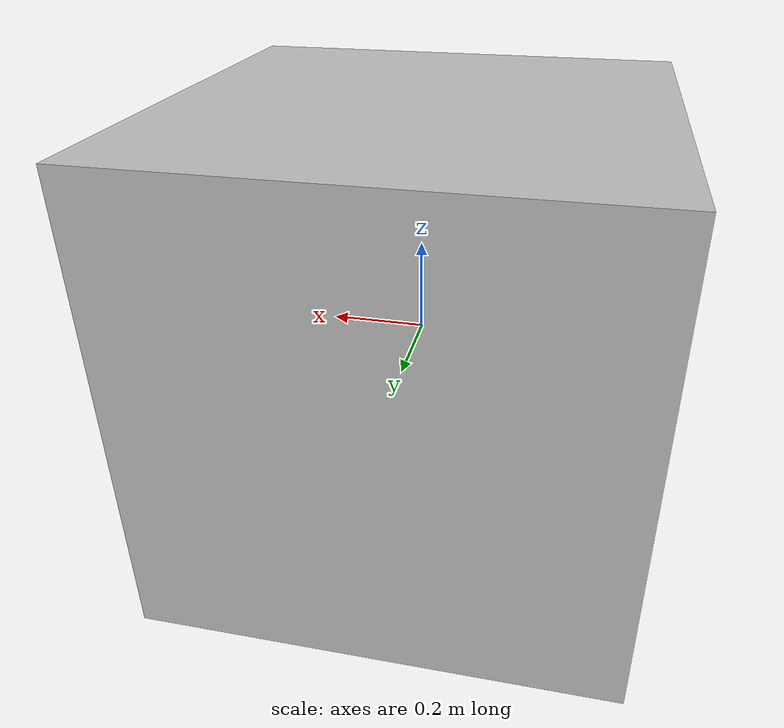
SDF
<?xml version="1.0" ?>
<sdf version="1.8">
  <world name="dvl_reset">
    <gravity>0 0 0</gravity>

    <physics name="reset_physics" type="dart">
      <max_step_size>0.02</max_step_size>
      <real_time_factor>0</real_time_factor>
    </physics>

    <plugin
      filename="gz-sim-physics-system"
      name="gz::sim::systems::Physics">
    </plugin>
    <plugin
      filename="gz-sim-sensors-system"
      name="gz::sim::systems::Sensors">
    </plugin>
    <plugin
      filename="gz-sim-dvl-system"
      name="gz::sim::systems::DopplerVelocityLogSystem">
    </plugin>

    <light type="directional" name="sun">
      <pose>0 0 10 0 0 0</pose>
      <diffuse>1 1 1 1</diffuse>
      <specular>0.5 0.5 0.5 1</specular>
      <attenuation>
        <range>1000</range>
        <constant>0.9</constant>
        <linear>0.01</linear>
        <quadratic>0.001</quadratic>
      </attenuation>
      <direction>-0.5 0.1 -0.9</direction>
    </light>

    <model name="seabed">
      <static>true</static>
      <pose>0 0 -20 0 0 0</pose>
      <link name="link">
        <collision name="collision">
          <geometry>
            <box>
              <size>200 200 0.1</size>
            </box>
          </geometry>
        </collision>
        <visual name="visual">
          <geometry>
            <box>
              <size>200 200 0.1</size>
            </box>
          </geometry>
        </visual>
      </link>
    </model>

    <model name="dvl_model">
      <pose>0 0 0 0 0 0</pose>
      <link name="base_link">
        <inertial>
          <mass>10</mass>
          <inertia>
            <ixx>1</ixx>
            <iyy>1</iyy>
            <izz>1</izz>
          </inertia>
        </inertial>
        <collision name="collision">
          <geometry>
            <box>
              <size>1 1 1</size>
            </box>
          </geometry>
        </collision>
        <visual name="visual">
          <geometry>
            <box>
              <size>1 1 1</size>
            </box>
          </geometry>
        </visual>

        <sensor name="teledyne_pathfinder_dvl" type="custom" gz:type="dvl">
          <pose degrees="true">0 0 -0.16 0 0 180</pose>
          <always_on>1</always_on>
          <update_rate>1</update_rate>
          <topic>/dvl/velocity</topic>
          <gz:dvl>
            <type>phased_array</type>
            <arrangement degrees="true">
              <beam id="1">
                <aperture>2</aperture>
                <rotation>45</rotation>
                <tilt>30</tilt>
              </beam>
              <beam id="2">
                <aperture>2</aperture>
                <rotation>135</rotation>
                <tilt>30</tilt>
              </beam>
              <beam id="3">
                <aperture>2</aperture>
                <rotation>-45</rotation>
                <tilt>30</tilt>
              </beam>
              <beam id="4">
                <aperture>2</aperture>
                <rotation>-135</rotation>
                <tilt>30</tilt>
              </beam>
            </arrangement>
            <tracking>
              <bottom_mode>
                <when>best</when>
                <noise type="gaussian">
                  <stddev>0.002</stddev>
                </noise>
                <visualize>false</visualize>
              </bottom_mode>
            </tracking>
            <resolution>0.01</resolution>
            <maximum_range>100.</maximum_range>
            <minimum_range>0.1</minimum_range>
            <reference_frame>0 0 0 0 0 -1.570796</reference_frame>
          </gz:dvl>
        </sensor>
      </link>
    </model>
  </world>
</sdf>
